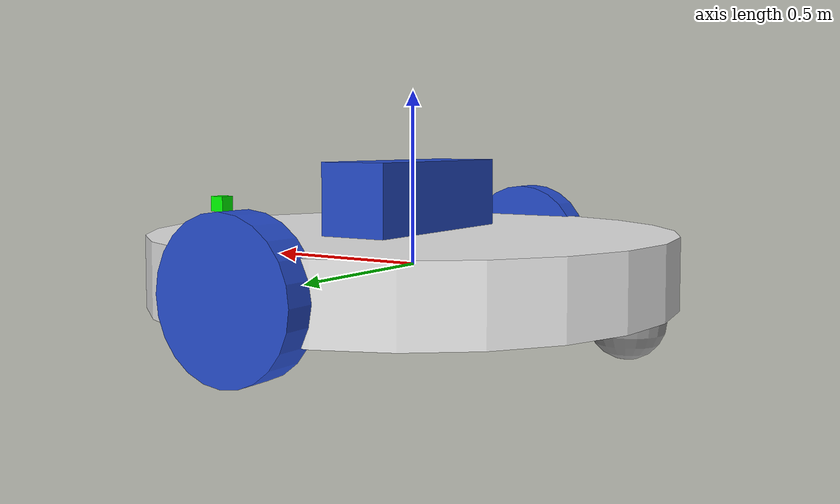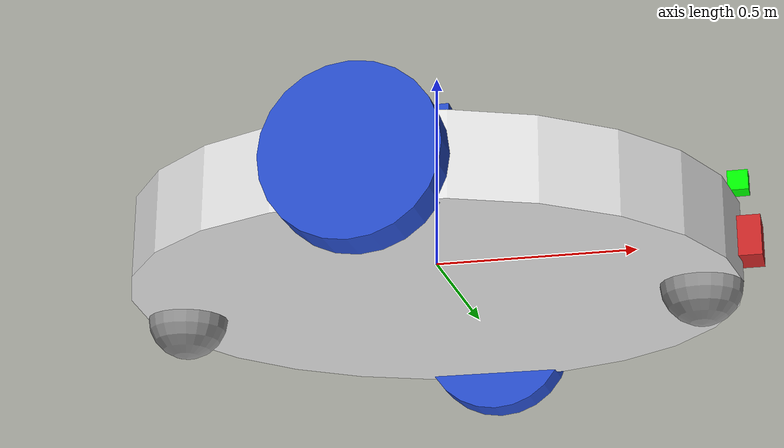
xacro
<?xml version='1.0'?>

<robot name="myrobot" xmlns:xacro="http://www.ros.org/wiki/xacro">

  <xacro:property name="cameraSize" value="0.05"/>
  <xacro:property name="cameraMass" value="0.1"/>

  <xacro:include filename="$(find mybot_description)/urdf/mybot.gazebo" />
  <xacro:include filename="$(find mybot_description)/urdf/materials.xacro" />

    <link name="base_link">
        <inertial>
            <mass value="3"/>
            <origin xyz="0 0 0"/>
            <inertia ixx="0.0282916666667" ixy="0" ixz="0" iyy="0.0282916666667" iyz="0" izz="0.05625"/>
        </inertial>
        <visual>
            <origin rpy="0 0 0" xyz="0 0 0"/>
            <geometry>
            <cylinder length="0.20" radius="0.75"/>
            </geometry>
            <material name="white"/>
        </visual>
        <collision>
            <origin rpy="0 0 0 " xyz="0 0 0"/>
            <geometry>
            <cylinder length="0.05" radius="0.75"/>
            </geometry>
        </collision>
    </link>

    <link name="right_wheel">
        <visual>
			<origin rpy="1.57079632679 0 0" xyz="0 0 0"/>
            <geometry>
                <cylinder length="0.1" radius="0.2"/>
            </geometry>
			<material name="blue"/>
        </visual>
		<collision>
		  <origin rpy="1.57079632679 0 0 " xyz="0 0 0"/>
		  <geometry>
		    <cylinder length="0.1" radius="0.2"/>
		  </geometry>
		</collision>
		<inertial>
		  <mass value="1"/>
		  <inertia ixx="1.0" ixy="0.0" ixz="0.0" iyy="1.0" iyz="0.0" izz="1.0"/>
		</inertial>
    </link>

    <joint name="right_wheel_joint" type="continuous">
      <parent link="base_link"/>
      <child link="right_wheel"/>
      <origin rpy="0 0 0" xyz="0.0 0.75 0.0"/>
      <axis rpy="0  0" xyz="0 1 0"/>
      <limit effort="100" velocity="100"/>
      <joint_properties damping="0.0" friction="0.0"/>
    </joint>

    <transmission name="right_wheel_control">
  		<type>transmission_interface/SimpleTransmission</type>
  		<actuator name="right_wheel_motor">
			<mechanicalReduction>1</mechanicalReduction>
  		</actuator>
  		<joint name="right_wheel_joint">
			<hardwareInterface>hardware_interface/EffortJointInterface</hardwareInterface>
  		</joint>
	</transmission>

    <link name="left_wheel">
        <visual>
			<origin rpy="1.57079632679 0 0" xyz="0 0 0"/>
            <geometry>
                <cylinder length="0.1" radius="0.2"/>
            </geometry>
			<material name="blue"/>
        </visual>
		<collision>
		  <origin rpy="1.57079632679 0 0" xyz="0 0 0"/>
		  <geometry>
		    <cylinder length="0.1" radius="0.2"/>
		  </geometry>
		</collision>
		<inertial>
		  <mass value="1"/>
		  <inertia ixx="1.0" ixy="0.0" ixz="0.0" iyy="1.0" iyz="0.0" izz="1.0"/>
		</inertial>
    </link>

    <joint name="left_wheel_joint" type="continuous">
	    <parent link="base_link"/>
	    <child link="left_wheel"/>
	    <origin rpy="0 0 0" xyz="0.0 -0.75 0.0"/>
	    <axis rpy="0  0" xyz="0 1 0"/>
	    <limit effort="100" velocity="100"/>
	    <joint_properties damping="0.0" friction="0.0"/>
	</joint>

    <transmission name="left_wheel_control">
		<type>transmission_interface/SimpleTransmission</type>
		<actuator name="left_wheel_motor">
			<mechanicalReduction>1</mechanicalReduction>
		</actuator>
		<joint name="left_wheel_joint">
			<hardwareInterface>hardware_interface/EffortJointInterface</hardwareInterface>
		</joint>
	</transmission>
    <!-- ============================= SENSORS ========================================= -->
    <link name="hokuyo_link">
        <visual>
	<origin rpy="0 0 0" xyz="0 0 0"/>
            <geometry>
                <box size="0.1 0.1 0.1"/>
            </geometry>
	<material name="red"/>
        </visual>
    </link>

    <joint name="hokuyo_joint" type="fixed">
		<parent link="base_link"/>
		<child link="hokuyo_link"/>
		<origin xyz="0.75 0 0.0" rpy="0 0.0 0" />
	</joint>

    <!-- =============================MicrosoftKinect ========================================= -->
    <link name="kinect_link">
        <inertial>
	  <mass value="0.001"/>
	  <origin xyz="0 0 0"/>
	  <inertia ixx="0.0001" ixy="0.0" ixz="0.0"
		   iyy="0.0001" iyz="0.0"
		   izz="0.0001"/>
	</inertial>
        <visual>
	    <origin rpy="0 0 0" xyz="0 0 0"/>
            <geometry>
                <box size="0.2 0.6 0.2"/>
            </geometry>
        </visual>
    </link>

    <joint name="kinect_joint" type="fixed">
		<parent link="base_link"/>
		<child link="kinect_link"/>
		<origin xyz="0.00 0 0.2" rpy="0 0 0" />
	</joint>

     <!-- ====================================Camera Plugin========================================== -->

     <link name="camera">
	    <collision>
	      <origin xyz="0 0 0" rpy="0 0 0"/>
	      <geometry>
		<box size="0.05 0.05 0.05"/>
	      </geometry>
	    </collision>

	    <visual>
	      <origin xyz="0 0 0" rpy="0 0 0"/>
	      <geometry>
		<box size="0.05 0.05 0.05"/>
	      </geometry>
	      <material name="red-1">
		<color rgba="0 1 0 1"/>
	      </material>
	    </visual>

	    <inertial>
	      <mass value="0.1" />
	      <origin xyz="0 0 0" rpy="0 0 0"/>
	      <box_inertia m="0.1" x="0.05" y="0.05" z="0.05" />
	      <inertia ixx="1e-6" ixy="0" ixz="0" iyy="1e-6" iyz="0" izz="1e-6" />
	    </inertial>
	</link>

    <joint name="camera_joint" type="fixed">
	    <axis xyz="0 1 0" />
	    <origin xyz=".75 0 0.15" rpy="0 0 0"/>
	    <parent link="base_link"/>
	    <child link="camera"/>
	</joint>

    <!-- ====================================CASTER WHEELS========================================== -->

    <link name="caster_wheel_back">
		<visual>
			<origin rpy="0 0 0" xyz="0 0 -0.1"/>
			<geometry>
                <sphere radius="0.1"/>
            </geometry>
		</visual>
		<collision>
			<origin rpy="0 0 0" xyz="0 0 -0.1"/>
			<geometry>
                <sphere radius="0.1"/>
            </geometry>
		</collision>
		<inertial>
			<origin xyz="0 0 0" />
			<mass value="1"/>
			<inertia ixx="1.0" ixy="0.0" ixz="0.0" iyy="1.0" iyz="0.0" izz="1.0"/>
		</inertial>
	</link>

	<joint name="base_to_caster_back" type="fixed">
		<parent link="base_link"/>
		<child link="caster_wheel_back"/>
		<origin rpy="0 0 0" xyz="-0.650 0 0" />
	</joint>

    <link name="caster_wheel_front">
		<visual>
			<origin rpy="0 0 0" xyz="0 0 -0.1"/>
			<geometry>
				<sphere radius="0.1"/>
			</geometry>
		</visual>
		<collision>
			<origin rpy="0 0 0" xyz="0 0 -0.1"/>
			<geometry>
				<sphere radius="0.1"/>
			</geometry>
		</collision>
		<inertial>
			<origin xyz="0 0 0" />
			<mass value="1"/>
			<inertia ixx="1.0" ixy="0.0" ixz="0.0" iyy="1.0" iyz="0.0" izz="1.0"/>
		</inertial>
	</link>

	<joint name="base_to_caster_front" type="fixed">
		<parent link="base_link"/>
		<child link="caster_wheel_front"/>
		<origin rpy="0 0 0" xyz="0.650 0 0" />
	</joint>

</robot>
